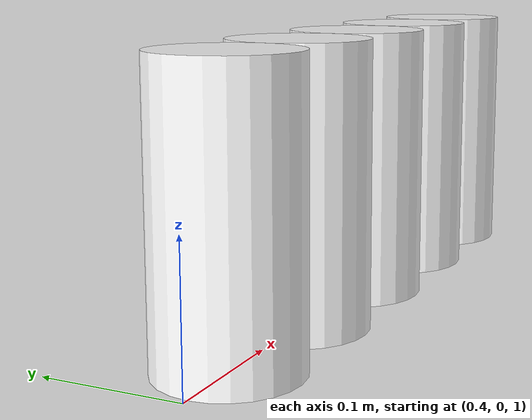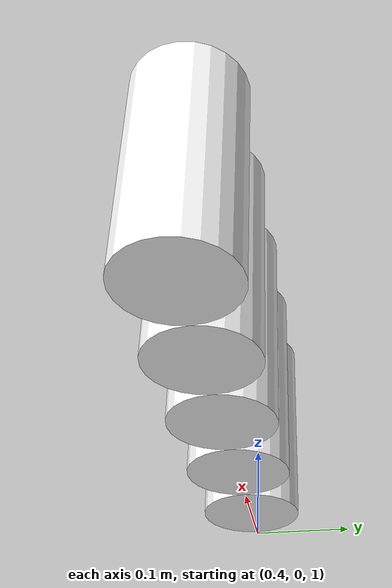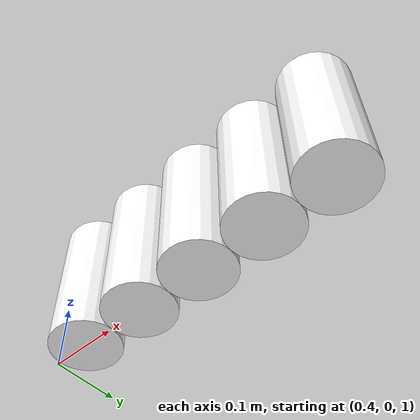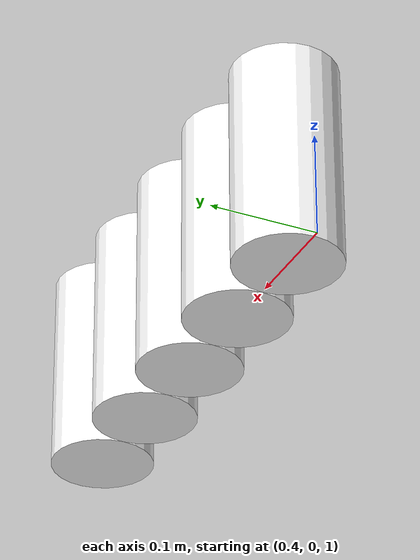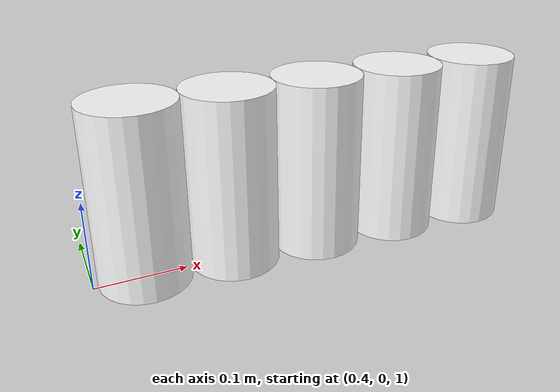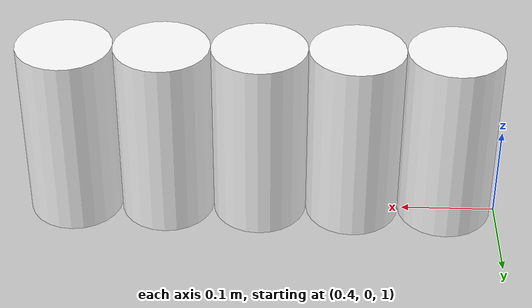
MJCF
<?xml version="1.0" encoding="utf-8"?>
<!-- from https://github.com/vikashplus/mj_envs/tree/master/mj_envs/hand_manipulation_suite/assets -->
<!-- Information about door can be found in this paper: https://arxiv.org/pdf/1709.10087.pdf -->

<mujoco model="custom_cylinder">
    <worldbody>
      <body>
        <body name="object" pos="0.4 0 1.1">
          <body name="frame" pos="0 0 0" quat="1 0 0 0 ">
              <inertial pos="0.3 0 0" quat="0.5 0.5 0.5 0.5" mass="7.85398" diaginertia="0.923301 0.764585 0.168533" />
              <geom size="0.05 0.10" pos="0.455 0 0" type="cylinder" rgba="1 1 1 1" group="0" name="1_frame"/>
              <geom size="0.05 0.10" pos="0.355 0 0" type="cylinder" rgba="1 1 1 1" group="0" name="2_frame"/>
              <geom size="0.05 0.10" pos="0.255 0 0" type="cylinder" rgba="1 1 1 1" group="0" name="3_frame"/>
              <geom size="0.05 0.10" pos="0.155 0 0" type="cylinder" rgba="1 1 1 1" group="0" name="4_frame"/>
              <geom size="0.05 0.10" pos="0.055 0 0" type="cylinder" rgba="1 1 1 1" group="0" name="5_frame"/>

          </body>
        </body>
        <site name="bottom_site" pos="0 0 -0.3" rgba="0 0 0 0" size="0.005"/>
        <site name="top_site" pos="0 0 0.3" rgba="0 0 0 0" size="0.005"/>
        <site name="horizontal_radius_site" pos="0.3 0 0" rgba="0 0 0 0" size="0.1"/>
      </body>
    </worldbody>
</mujoco>
